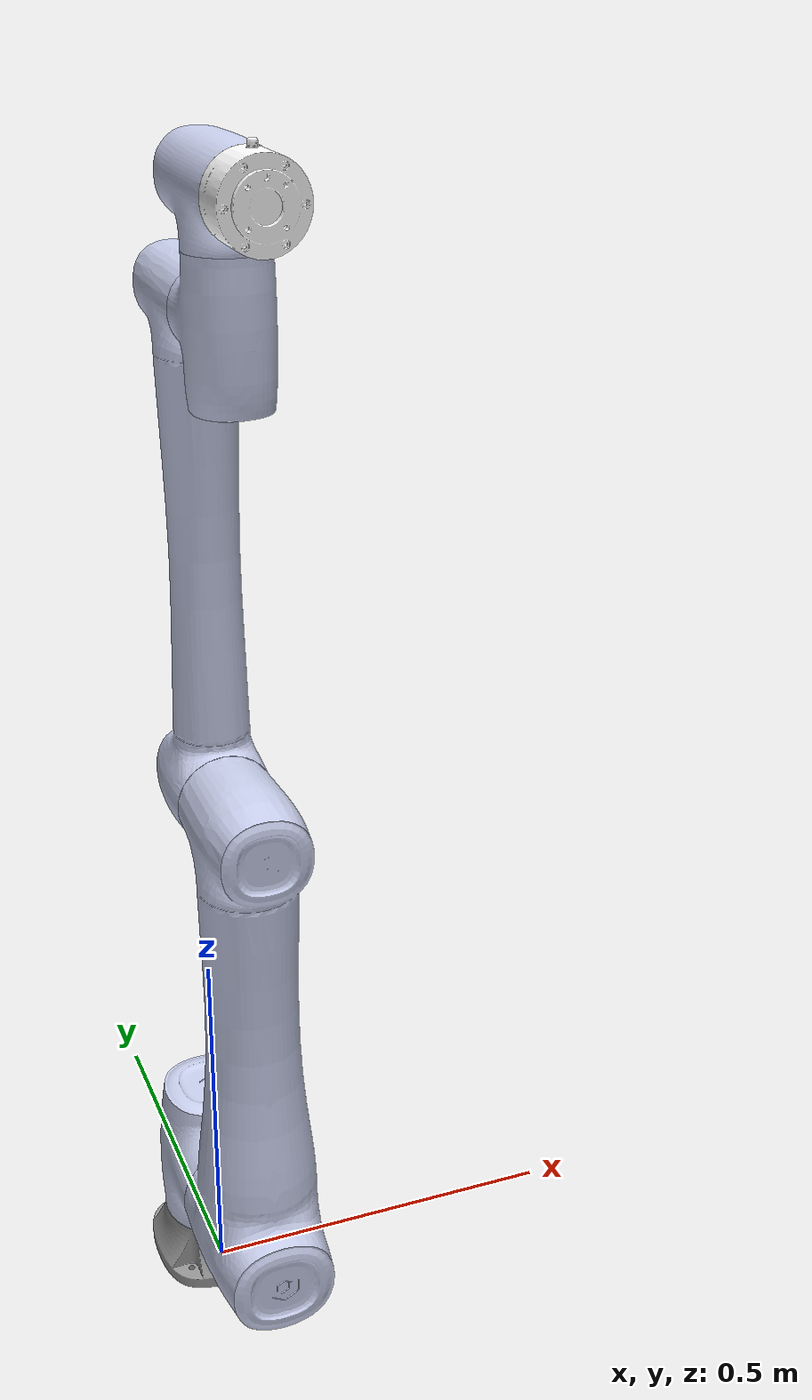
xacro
<?xml version="1.0"?>
<robot name="cr10af_robot" xmlns:xacro="http://ros.org/wiki/xacro">
  <link name="dummy_link"/>
  <link
    name="base_link">
    <inertial>
      <origin
        xyz="-3.7612E-06 0.0011357 0.032382"
        rpy="0 0 0" />
      <mass
        value="2.01" />
      <inertia
        ixx="0.0042064"
        ixy="6.3817E-07"
        ixz="4.917E-07"
        iyy="0.0040224"
        iyz="1.8082E-05"
        izz="0.0067707" />
    </inertial>
    <visual>
      <origin
        xyz="0 0 0"
        rpy="0 0 0" />
      <geometry>
        <mesh
          filename="file://$(find cra_description)/meshes/cr10af/base_link.STL" />
      </geometry>
      <material
        name="">
        <color
          rgba="0.59216 0.59216 0.59216 1" />
      </material>
    </visual>
    <collision>
      <origin
        xyz="0 0 0"
        rpy="0 0 0" />
      <geometry>
        <mesh
          filename="file://$(find cra_description)/meshes/cr10af/base_link.STL" />
      </geometry>
    </collision>
  </link>
    <link  name="world"/>
<joint name="world_joint" type="fixed">
    <origin xyz="0 0 0.03" rpy="0 0 0" />
    <parent link="world" />
    <child  link="dummy_link" />
  </joint>
  <joint name="dummy_joint" type="fixed">
      <parent link="dummy_link" />
      <child  link="base_link" />
    </joint>
  <link
    name="Link1">
    <inertial>
      <origin
        xyz="-5.9674E-07 -0.011961 0.10128"
        rpy="0 0 0" />
      <mass
        value="8.97" />
      <inertia
        ixx="0.020878"
        ixy="-2.467E-08"
        ixz="9.3616E-08"
        iyy="0.018796"
        iyz="0.00012915"
        izz="0.015433" />
    </inertial>
    <visual>
      <origin
        xyz="0 0 0"
        rpy="0 0 0" />
      <geometry>
        <mesh
          filename="file://$(find cra_description)/meshes/cr10af/J1.STL" />
      </geometry>
      <material
        name="">
        <color
          rgba="0.79216 0.81961 0.93333 1" />
      </material>
    </visual>
    <collision>
      <origin
        xyz="0 0 0"
        rpy="0 0 0" />
      <geometry>
        <mesh
          filename="file://$(find cra_description)/meshes/cr10af/J1.STL" />
      </geometry>
    </collision>
  </link>
  <joint
    name="joint1"
    type="revolute">
    <origin
      xyz="0 0 0.079"
      rpy="0 0 0" />
    <parent
      link="base_link" />
    <child
      link="Link1" />
    <axis
      xyz="0 0 1" />
    <limit
      lower="-6.2831"
      upper="6.2831"
      effort="300"
      velocity="3.14" />
  </joint>
  <link
    name="Link2">
    <inertial>
      <origin
        xyz="2.1881E-07 -0.093266 0.24604"
        rpy="0 0 0" />
      <mass
        value="16.9" />
      <inertia
        ixx="0.60997"
        ixy="3.4182E-07"
        ixz="-1.0197E-06"
        iyy="0.60329"
        iyz="0.0035505"
        izz="0.034" />
    </inertial>
    <visual>
      <origin
        xyz="0 0 0"
        rpy="0 0 0" />
      <geometry>
        <mesh
          filename="file://$(find cra_description)/meshes/cr10af/J2.STL" />
      </geometry>
      <material
        name="">
        <color
          rgba="0.79216 0.81961 0.93333 1" />
      </material>
    </visual>
    <collision>
      <origin
        xyz="0 0 0"
        rpy="0 0 0" />
      <geometry>
        <mesh
          filename="file://$(find cra_description)/meshes/cr10af/J2.STL" />
      </geometry>
    </collision>
  </link>
  <joint
    name="joint2"
    type="revolute">
    <origin
      xyz="0 -0.102 0.0975"
      rpy="0 0 0" />
    <parent
      link="Link1" />
    <child
      link="Link2" />
    <axis
      xyz="0 -1 0" />
    <limit
      lower="-6.2831"
      upper="6.2831"
      effort="300"
      velocity="3.14" />
  </joint>
  <link
    name="Link3">
    <inertial>
      <origin
        xyz="-9.4859E-08 0.05571 0.27104"
        rpy="0 0 0" />
      <mass
        value="5.47" />
      <inertia
        ixx="0.23209"
        ixy="-6.3966E-09"
        ixz="-3.007E-07"
        iyy="0.23101"
        iyz="0.0026298"
        izz="0.0068608" />
    </inertial>
    <visual>
      <origin
        xyz="0 0 0"
        rpy="0 0 0" />
      <geometry>
        <mesh
          filename="file://$(find cra_description)/meshes/cr10af/J3.STL" />
      </geometry>
      <material
        name="">
        <color
          rgba="0.79216 0.81961 0.93333 1" />
      </material>
    </visual>
    <collision>
      <origin
        xyz="0 0 0"
        rpy="0 0 0" />
      <geometry>
        <mesh
          filename="file://$(find cra_description)/meshes/cr10af/J3.STL" />
      </geometry>
    </collision>
  </link>
  <joint
    name="joint3"
    type="revolute">
    <origin
      xyz="0 -0.015 0.607"
      rpy="0 0 0" />
    <parent
      link="Link2" />
    <child
      link="Link3" />
    <axis
      xyz="0 -1 0" />
    <limit
      lower="-2.7925"
      upper="2.7925"
      effort="300"
      velocity="3.14" />
  </joint>
  <link
    name="Link4">
    <inertial>
      <origin
        xyz="2.8401E-07 -0.060432 -0.010119"
        rpy="0 0 0" />
      <mass
        value="2.6" />
      <inertia
        ixx="0.0027385"
        ixy="-3.2473E-09"
        ixz="-1.4591E-09"
        iyy="0.0025464"
        iyz="6.9168E-05"
        izz="0.0014808" />
    </inertial>
    <visual>
      <origin
        xyz="0 0 0"
        rpy="0 0 0" />
      <geometry>
        <mesh
          filename="file://$(find cra_description)/meshes/cr10af/J4.STL" />
      </geometry>
      <material
        name="">
        <color
          rgba="0.79216 0.81961 0.93333 1" />
      </material>
    </visual>
    <collision>
      <origin
        xyz="0 0 0"
        rpy="0 0 0" />
      <geometry>
        <mesh
          filename="file://$(find cra_description)/meshes/cr10af/J4.STL" />
      </geometry>
    </collision>
  </link>
  <joint
    name="joint4"
    type="revolute">
    <origin
      xyz="0 -0.0075 0.568"
      rpy="0 0 0" />
    <parent
      link="Link3" />
    <child
      link="Link4" />
    <axis
      xyz="0 -1 0" />
    <limit
      lower="-6.2831"
      upper="6.2831"
      effort="300"
      velocity="3.14" />
  </joint>
  <link
    name="Link5">
    <inertial>
      <origin
        xyz="-5.8252E-07 0.016958 0.053728"
        rpy="0 0 0" />
      <mass
        value="2.6" />
      <inertia
        ixx="0.0030944"
        ixy="-3.8416E-08"
        ixz="-1.9864E-08"
        iyy="0.0013893"
        iyz="6.7569E-05"
        izz="0.0030186" />
    </inertial>
    <visual>
      <origin
        xyz="0 0 0"
        rpy="0 0 0" />
      <geometry>
        <mesh
          filename="file://$(find cra_description)/meshes/cr10af/J5.STL" />
      </geometry>
      <material
        name="">
        <color
          rgba="0.79216 0.81961 0.93333 1" />
      </material>
    </visual>
    <collision>
      <origin
        xyz="0 0 0"
        rpy="0 0 0" />
      <geometry>
        <mesh
          filename="file://$(find cra_description)/meshes/cr10af/J5.STL" />
      </geometry>
    </collision>
  </link>
  <joint
    name="joint5"
    type="revolute">
    <origin
      xyz="0 -0.066501 0.068"
      rpy="0 0 0" />
    <parent
      link="Link4" />
    <child
      link="Link5" />
    <axis
      xyz="0 0 1" />
    <limit
      lower="-6.2831"
      upper="6.2831"
      effort="300"
      velocity="3.14" />
  </joint>
  <link
    name="Link6">
    <inertial>
      <origin
        xyz="7.3738E-09 -0.028312 6.3267E-05"
        rpy="0 0 0" />
      <mass
        value="0.4" />
      <inertia
        ixx="0.00027773"
        ixy="-2.9004E-11"
        ixz="1.4444E-10"
        iyy="0.00035983"
        iyz="3.5391E-07"
        izz="0.00027649" />
    </inertial>
    <visual>
      <origin
        xyz="0 0 0"
        rpy="0 0 0" />
      <geometry>
        <mesh
          filename="file://$(find cra_description)/meshes/cr10af/J6.STL" />
      </geometry>
      <material
        name="">
        <color
          rgba="1 1 1 1" />
      </material>
    </visual>
    <collision>
      <origin
        xyz="0 0 0"
        rpy="0 0 0" />
      <geometry>
        <mesh
          filename="file://$(find cra_description)/meshes/cr10af/J6.STL" />
      </geometry>
    </collision>
  </link>
  <joint
    name="joint6"
    type="revolute">
    <origin
      xyz="0 -0.066499 0.057"
      rpy="0 0 0" />
    <parent
      link="Link5" />
    <child
      link="Link6" />
    <axis
      xyz="0 -1 0" />
    <limit
      lower="-6.2831"
      upper="6.2831"
      effort="300"
      velocity="3.14" />
  </joint>
  <link name="tool0"/>
  <joint name="tool_joint" type="fixed">
    <origin xyz="0 0 0" rpy="4.7124 0 3.14159" />
    <parent link="Link6" />
    <child link="tool0" />
  </joint>
<gazebo reference="base_link">
        <gravity>false</gravity>
        <selfCollide>true</selfCollide>
    </gazebo>
    <gazebo reference="J1">
        <gravity>false</gravity>
        <selfCollide>true</selfCollide>
    </gazebo>
    <gazebo reference="J2">
        <gravity>false</gravity>
        <selfCollide>true</selfCollide>
    </gazebo>
    <gazebo reference="J3">
        <gravity>false</gravity>
        <selfCollide>true</selfCollide>
    </gazebo>
    <gazebo reference="J4">
        <gravity>false</gravity>
        <selfCollide>true</selfCollide>
    </gazebo>
    <gazebo reference="J5">
        <gravity>false</gravity>
        <selfCollide>true</selfCollide>
    </gazebo>
    <gazebo reference="J6">
        <gravity>false</gravity>
        <selfCollide>true</selfCollide>
    </gazebo>
    <!-- 在运行demo.launch.py时，需要注释这个ros2_control节点，因为它使用了xxx.ros2_control.xacro来生成了ros2_control节点-->
    <ros2_control name="GazeboSystem" type="system">
        <hardware>
            <plugin>gz_ros2_control/GazeboSimSystem</plugin>
        </hardware>
        <joint name="joint1">
            <command_interface name="position">
                <param name="min">-1</param>
                <param name="max">1</param>
            </command_interface>
            <state_interface name="position">
                <param name="initial_value">0.0</param>
            </state_interface>
            <state_interface name="velocity"/>
        </joint>
        <joint name="joint2">
            <command_interface name="position">
                <param name="min">-1</param>
                <param name="max">1</param>
            </command_interface>
            <state_interface name="position">
                <param name="initial_value">0.0</param>
            </state_interface>
            <state_interface name="velocity"/>
        </joint>
        <joint name="joint3">
            <command_interface name="position">
                <param name="min">-1</param>
                <param name="max">1</param>
            </command_interface>
            <state_interface name="position">
                <param name="initial_value">0.0</param>
            </state_interface>
            <state_interface name="velocity"/>
        </joint>
        <joint name="joint4">
            <command_interface name="position">
                <param name="min">-1</param>
                <param name="max">1</param>
            </command_interface>
            <state_interface name="position">
                <param name="initial_value">0.0</param>
            </state_interface>
            <state_interface name="velocity"/>
        </joint>
        <joint name="joint5">
            <command_interface name="position">
                <param name="min">-1</param>
                <param name="max">1</param>
            </command_interface>
            <state_interface name="position">
                <param name="initial_value">0.0</param>
            </state_interface>
            <state_interface name="velocity"/>
        </joint>
        <joint name="joint6">
            <command_interface name="position">
                <param name="min">-1</param>
                <param name="max">1</param>
            </command_interface>
            <state_interface name="position">
                <param name="initial_value">0.0</param>
            </state_interface>
            <state_interface name="velocity"/>
        </joint>
    </ros2_control>

    <gazebo>
        <plugin filename="gz_ros2_control-system" name="gz_ros2_control::GazeboSimROS2ControlPlugin">
            <parameters>$(find cr10af_moveit)/config/ros2_controllers.yaml</parameters>
            <robot_param_node>robot_state_publisher</robot_param_node>
        </plugin>
    </gazebo>

</robot>
